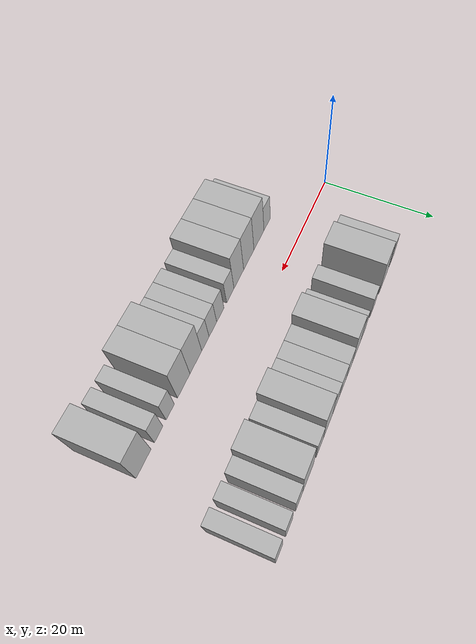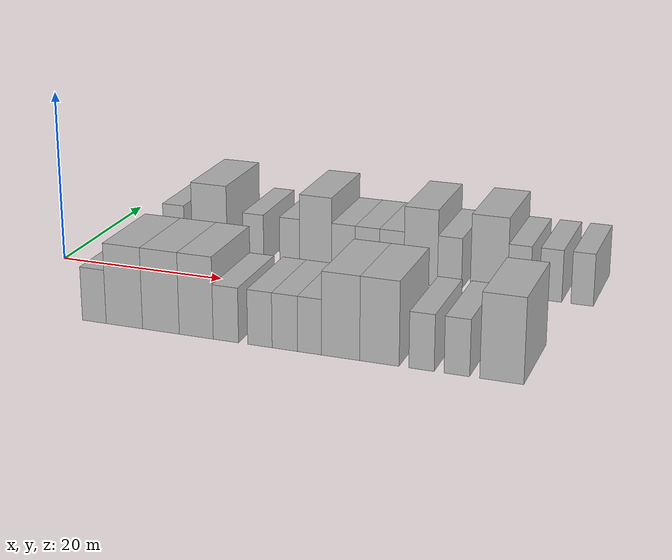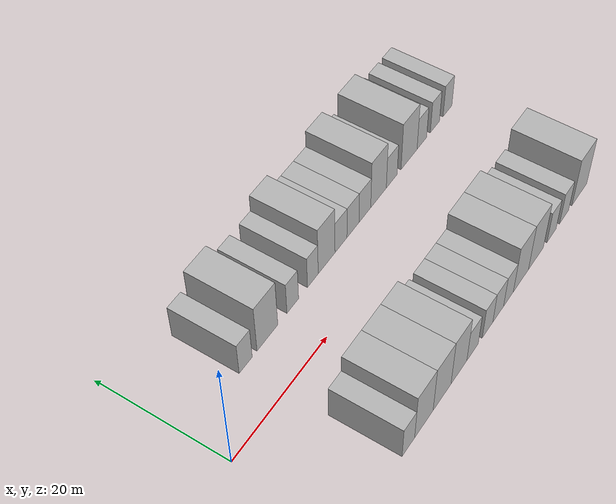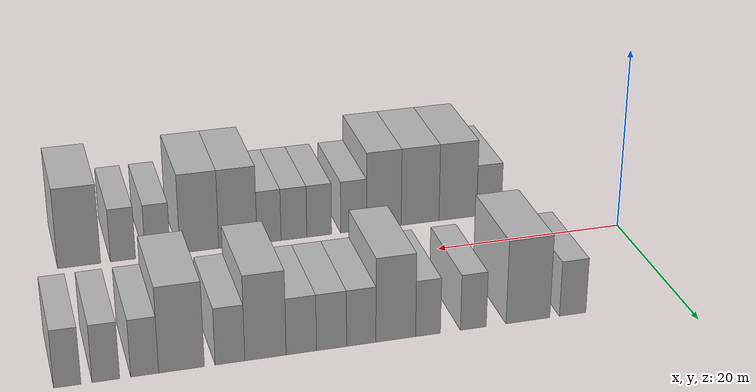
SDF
<sdf version="1.6">
 <world name="default">
  <model name="building_1">
   <static>1</static>
   <pose>11.3619 11.0000 0 0.000000 0.000000 1.570796</pose>
   <link name="link">
    <pose>0 0 3.00 0 0 0</pose>
    <collision name="collision"><geometry><box><size>10.0000 2.7237 6.0000</size></box></geometry></collision>
    <visual name="visual">
     <cast_shadows>0</cast_shadows>
     <geometry><box><size>10.0000 2.7237 6.0000</size></box></geometry>
     <material>
      <script>
       <uri>model://HANNAS_wall/materials/scripts</uri>
       <uri>model://HANNAS_wall/materials/textures</uri>
       <name>vrc/HANNAS_wall</name>
      </script>
     </material>
    </visual>
   </link>
  </model>
  <model name="building_2">
   <static>1</static>
   <pose>15.9564 11.0000 0 0.000000 0.000000 1.570796</pose>
   <link name="link">
    <pose>0 0 4.50 0 0 0</pose>
    <collision name="collision"><geometry><box><size>10.0000 4.4653 9.0000</size></box></geometry></collision>
    <visual name="visual">
     <cast_shadows>0</cast_shadows>
     <geometry><box><size>10.0000 4.4653 9.0000</size></box></geometry>
     <material>
      <script>
       <uri>model://HANNAS_wall/materials/scripts</uri>
       <uri>model://HANNAS_wall/materials/textures</uri>
       <name>vrc/HANNAS_wall</name>
      </script>
     </material>
    </visual>
   </link>
  </model>
  <model name="building_3">
   <static>1</static>
   <pose>21.4835 11.0000 0 0.000000 0.000000 1.570796</pose>
   <link name="link">
    <pose>0 0 3.00 0 0 0</pose>
    <collision name="collision"><geometry><box><size>10.0000 2.5890 6.0000</size></box></geometry></collision>
    <visual name="visual">
     <cast_shadows>0</cast_shadows>
     <geometry><box><size>10.0000 2.5890 6.0000</size></box></geometry>
     <material>
      <script>
       <uri>model://HANNAS_wall/materials/scripts</uri>
       <uri>model://HANNAS_wall/materials/textures</uri>
       <name>vrc/HANNAS_wall</name>
      </script>
     </material>
    </visual>
   </link>
  </model>
  <model name="building_4">
   <static>1</static>
   <pose>26.0084 11.0000 0 0.000000 0.000000 1.570796</pose>
   <link name="link">
    <pose>0 0 3.00 0 0 0</pose>
    <collision name="collision"><geometry><box><size>10.0000 2.4608 6.0000</size></box></geometry></collision>
    <visual name="visual">
     <cast_shadows>0</cast_shadows>
     <geometry><box><size>10.0000 2.4608 6.0000</size></box></geometry>
     <material>
      <script>
       <uri>model://HANNAS_wall/materials/scripts</uri>
       <uri>model://HANNAS_wall/materials/textures</uri>
       <name>vrc/HANNAS_wall</name>
      </script>
     </material>
    </visual>
   </link>
  </model>
  <model name="building_5">
   <static>1</static>
   <pose>29.1895 11.0000 0 0.000000 0.000000 1.570796</pose>
   <link name="link">
    <pose>0 0 4.50 0 0 0</pose>
    <collision name="collision"><geometry><box><size>10.0000 3.9013 9.0000</size></box></geometry></collision>
    <visual name="visual">
     <cast_shadows>0</cast_shadows>
     <geometry><box><size>10.0000 3.9013 9.0000</size></box></geometry>
     <material>
      <script>
       <uri>model://HANNAS_wall/materials/scripts</uri>
       <uri>model://HANNAS_wall/materials/textures</uri>
       <name>vrc/HANNAS_wall</name>
      </script>
     </material>
    </visual>
   </link>
  </model>
  <model name="building_6">
   <static>1</static>
   <pose>32.5640 11.0000 0 0.000000 0.000000 1.570796</pose>
   <link name="link">
    <pose>0 0 3.00 0 0 0</pose>
    <collision name="collision"><geometry><box><size>10.0000 2.8478 6.0000</size></box></geometry></collision>
    <visual name="visual">
     <cast_shadows>0</cast_shadows>
     <geometry><box><size>10.0000 2.8478 6.0000</size></box></geometry>
     <material>
      <script>
       <uri>model://HANNAS_wall/materials/scripts</uri>
       <uri>model://HANNAS_wall/materials/textures</uri>
       <name>vrc/HANNAS_wall</name>
      </script>
     </material>
    </visual>
   </link>
  </model>
  <model name="building_7">
   <static>1</static>
   <pose>35.4418 11.0000 0 0.000000 0.000000 1.570796</pose>
   <link name="link">
    <pose>0 0 3.00 0 0 0</pose>
    <collision name="collision"><geometry><box><size>10.0000 2.9078 6.0000</size></box></geometry></collision>
    <visual name="visual">
     <cast_shadows>0</cast_shadows>
     <geometry><box><size>10.0000 2.9078 6.0000</size></box></geometry>
     <material>
      <script>
       <uri>model://HANNAS_wall/materials/scripts</uri>
       <uri>model://HANNAS_wall/materials/textures</uri>
       <name>vrc/HANNAS_wall</name>
      </script>
     </material>
    </visual>
   </link>
  </model>
  <model name="building_8">
   <static>1</static>
   <pose>38.3424 11.0000 0 0.000000 0.000000 1.570796</pose>
   <link name="link">
    <pose>0 0 3.00 0 0 0</pose>
    <collision name="collision"><geometry><box><size>10.0000 2.8935 6.0000</size></box></geometry></collision>
    <visual name="visual">
     <cast_shadows>0</cast_shadows>
     <geometry><box><size>10.0000 2.8935 6.0000</size></box></geometry>
     <material>
      <script>
       <uri>model://HANNAS_wall/materials/scripts</uri>
       <uri>model://HANNAS_wall/materials/textures</uri>
       <name>vrc/HANNAS_wall</name>
      </script>
     </material>
    </visual>
   </link>
  </model>
  <model name="building_9">
   <static>1</static>
   <pose>41.7459 11.0000 0 0.000000 0.000000 1.570796</pose>
   <link name="link">
    <pose>0 0 4.50 0 0 0</pose>
    <collision name="collision"><geometry><box><size>10.0000 3.9136 9.0000</size></box></geometry></collision>
    <visual name="visual">
     <cast_shadows>0</cast_shadows>
     <geometry><box><size>10.0000 3.9136 9.0000</size></box></geometry>
     <material>
      <script>
       <uri>model://HANNAS_wall/materials/scripts</uri>
       <uri>model://HANNAS_wall/materials/textures</uri>
       <name>vrc/HANNAS_wall</name>
      </script>
     </material>
    </visual>
   </link>
  </model>
  <model name="building_10">
   <static>1</static>
   <pose>45.0957 11.0000 0 0.000000 0.000000 1.570796</pose>
   <link name="link">
    <pose>0 0 3.00 0 0 0</pose>
    <collision name="collision"><geometry><box><size>10.0000 2.7859 6.0000</size></box></geometry></collision>
    <visual name="visual">
     <cast_shadows>0</cast_shadows>
     <geometry><box><size>10.0000 2.7859 6.0000</size></box></geometry>
     <material>
      <script>
       <uri>model://HANNAS_wall/materials/scripts</uri>
       <uri>model://HANNAS_wall/materials/textures</uri>
       <name>vrc/HANNAS_wall</name>
      </script>
     </material>
    </visual>
   </link>
  </model>
  <model name="building_11">
   <static>1</static>
   <pose>49.6018 11.0000 0 0.000000 0.000000 1.570796</pose>
   <link name="link">
    <pose>0 0 4.50 0 0 0</pose>
    <collision name="collision"><geometry><box><size>10.0000 4.2262 9.0000</size></box></geometry></collision>
    <visual name="visual">
     <cast_shadows>0</cast_shadows>
     <geometry><box><size>10.0000 4.2262 9.0000</size></box></geometry>
     <material>
      <script>
       <uri>model://HANNAS_wall/materials/scripts</uri>
       <uri>model://HANNAS_wall/materials/textures</uri>
       <name>vrc/HANNAS_wall</name>
      </script>
     </material>
    </visual>
   </link>
  </model>
  <model name="building_12">
   <static>1</static>
   <pose>52.9961 11.0000 0 0.000000 0.000000 1.570796</pose>
   <link name="link">
    <pose>0 0 3.00 0 0 0</pose>
    <collision name="collision"><geometry><box><size>10.0000 2.5625 6.0000</size></box></geometry></collision>
    <visual name="visual">
     <cast_shadows>0</cast_shadows>
     <geometry><box><size>10.0000 2.5625 6.0000</size></box></geometry>
     <material>
      <script>
       <uri>model://HANNAS_wall/materials/scripts</uri>
       <uri>model://HANNAS_wall/materials/textures</uri>
       <name>vrc/HANNAS_wall</name>
      </script>
     </material>
    </visual>
   </link>
  </model>
  <model name="building_13">
   <static>1</static>
   <pose>56.5271 11.0000 0 0.000000 0.000000 1.570796</pose>
   <link name="link">
    <pose>0 0 3.00 0 0 0</pose>
    <collision name="collision"><geometry><box><size>10.0000 2.4995 6.0000</size></box></geometry></collision>
    <visual name="visual">
     <cast_shadows>0</cast_shadows>
     <geometry><box><size>10.0000 2.4995 6.0000</size></box></geometry>
     <material>
      <script>
       <uri>model://HANNAS_wall/materials/scripts</uri>
       <uri>model://HANNAS_wall/materials/textures</uri>
       <name>vrc/HANNAS_wall</name>
      </script>
     </material>
    </visual>
   </link>
  </model>
  <model name="building_14">
   <static>1</static>
   <pose>60.0050 11.0000 0 0.000000 0.000000 1.570796</pose>
   <link name="link">
    <pose>0 0 3.00 0 0 0</pose>
    <collision name="collision"><geometry><box><size>10.0000 2.4562 6.0000</size></box></geometry></collision>
    <visual name="visual">
     <cast_shadows>0</cast_shadows>
     <geometry><box><size>10.0000 2.4562 6.0000</size></box></geometry>
     <material>
      <script>
       <uri>model://HANNAS_wall/materials/scripts</uri>
       <uri>model://HANNAS_wall/materials/textures</uri>
       <name>vrc/HANNAS_wall</name>
      </script>
     </material>
    </visual>
   </link>
  </model>
  <model name="building_56">
   <static>1</static>
   <pose>12.4048 -11.0000 0 0.000000 0.000000 1.570796</pose>
   <link name="link">
    <pose>0 0 3.00 0 0 0</pose>
    <collision name="collision"><geometry><box><size>10.0000 2.8097 6.0000</size></box></geometry></collision>
    <visual name="visual">
     <cast_shadows>0</cast_shadows>
     <geometry><box><size>10.0000 2.8097 6.0000</size></box></geometry>
     <material>
      <script>
       <uri>model://HANNAS_wall/materials/scripts</uri>
       <uri>model://HANNAS_wall/materials/textures</uri>
       <name>vrc/HANNAS_wall</name>
      </script>
     </material>
    </visual>
   </link>
  </model>
  <model name="building_57">
   <static>1</static>
   <pose>15.9327 -11.0000 0 0.000000 0.000000 1.570796</pose>
   <link name="link">
    <pose>0 0 4.50 0 0 0</pose>
    <collision name="collision"><geometry><box><size>10.0000 4.2461 9.0000</size></box></geometry></collision>
    <visual name="visual">
     <cast_shadows>0</cast_shadows>
     <geometry><box><size>10.0000 4.2461 9.0000</size></box></geometry>
     <material>
      <script>
       <uri>model://HANNAS_wall/materials/scripts</uri>
       <uri>model://HANNAS_wall/materials/textures</uri>
       <name>vrc/HANNAS_wall</name>
      </script>
     </material>
    </visual>
   </link>
  </model>
  <model name="building_58">
   <static>1</static>
   <pose>20.1625 -11.0000 0 0.000000 0.000000 1.570796</pose>
   <link name="link">
    <pose>0 0 4.50 0 0 0</pose>
    <collision name="collision"><geometry><box><size>10.0000 4.2135 9.0000</size></box></geometry></collision>
    <visual name="visual">
     <cast_shadows>0</cast_shadows>
     <geometry><box><size>10.0000 4.2135 9.0000</size></box></geometry>
     <material>
      <script>
       <uri>model://HANNAS_wall/materials/scripts</uri>
       <uri>model://HANNAS_wall/materials/textures</uri>
       <name>vrc/HANNAS_wall</name>
      </script>
     </material>
    </visual>
   </link>
  </model>
  <model name="building_59">
   <static>1</static>
   <pose>24.1878 -11.0000 0 0.000000 0.000000 1.570796</pose>
   <link name="link">
    <pose>0 0 4.50 0 0 0</pose>
    <collision name="collision"><geometry><box><size>10.0000 3.8370 9.0000</size></box></geometry></collision>
    <visual name="visual">
     <cast_shadows>0</cast_shadows>
     <geometry><box><size>10.0000 3.8370 9.0000</size></box></geometry>
     <material>
      <script>
       <uri>model://HANNAS_wall/materials/scripts</uri>
       <uri>model://HANNAS_wall/materials/textures</uri>
       <name>vrc/HANNAS_wall</name>
      </script>
     </material>
    </visual>
   </link>
  </model>
  <model name="building_60">
   <static>1</static>
   <pose>27.5183 -11.0000 0 0.000000 0.000000 1.570796</pose>
   <link name="link">
    <pose>0 0 3.00 0 0 0</pose>
    <collision name="collision"><geometry><box><size>10.0000 2.8242 6.0000</size></box></geometry></collision>
    <visual name="visual">
     <cast_shadows>0</cast_shadows>
     <geometry><box><size>10.0000 2.8242 6.0000</size></box></geometry>
     <material>
      <script>
       <uri>model://HANNAS_wall/materials/scripts</uri>
       <uri>model://HANNAS_wall/materials/textures</uri>
       <name>vrc/HANNAS_wall</name>
      </script>
     </material>
    </visual>
   </link>
  </model>
  <model name="building_61">
   <static>1</static>
   <pose>31.2732 -11.0000 0 0.000000 0.000000 1.570796</pose>
   <link name="link">
    <pose>0 0 3.00 0 0 0</pose>
    <collision name="collision"><geometry><box><size>10.0000 2.6855 6.0000</size></box></geometry></collision>
    <visual name="visual">
     <cast_shadows>0</cast_shadows>
     <geometry><box><size>10.0000 2.6855 6.0000</size></box></geometry>
     <material>
      <script>
       <uri>model://HANNAS_wall/materials/scripts</uri>
       <uri>model://HANNAS_wall/materials/textures</uri>
       <name>vrc/HANNAS_wall</name>
      </script>
     </material>
    </visual>
   </link>
  </model>
  <model name="building_62">
   <static>1</static>
   <pose>33.9993 -11.0000 0 0.000000 0.000000 1.570796</pose>
   <link name="link">
    <pose>0 0 3.00 0 0 0</pose>
    <collision name="collision"><geometry><box><size>10.0000 2.7667 6.0000</size></box></geometry></collision>
    <visual name="visual">
     <cast_shadows>0</cast_shadows>
     <geometry><box><size>10.0000 2.7667 6.0000</size></box></geometry>
     <material>
      <script>
       <uri>model://HANNAS_wall/materials/scripts</uri>
       <uri>model://HANNAS_wall/materials/textures</uri>
       <name>vrc/HANNAS_wall</name>
      </script>
     </material>
    </visual>
   </link>
  </model>
  <model name="building_63">
   <static>1</static>
   <pose>36.6693 -11.0000 0 0.000000 0.000000 1.570796</pose>
   <link name="link">
    <pose>0 0 3.00 0 0 0</pose>
    <collision name="collision"><geometry><box><size>10.0000 2.5733 6.0000</size></box></geometry></collision>
    <visual name="visual">
     <cast_shadows>0</cast_shadows>
     <geometry><box><size>10.0000 2.5733 6.0000</size></box></geometry>
     <material>
      <script>
       <uri>model://HANNAS_wall/materials/scripts</uri>
       <uri>model://HANNAS_wall/materials/textures</uri>
       <name>vrc/HANNAS_wall</name>
      </script>
     </material>
    </visual>
   </link>
  </model>
  <model name="building_64">
   <static>1</static>
   <pose>39.9777 -11.0000 0 0.000000 0.000000 1.570796</pose>
   <link name="link">
    <pose>0 0 4.50 0 0 0</pose>
    <collision name="collision"><geometry><box><size>10.0000 4.0435 9.0000</size></box></geometry></collision>
    <visual name="visual">
     <cast_shadows>0</cast_shadows>
     <geometry><box><size>10.0000 4.0435 9.0000</size></box></geometry>
     <material>
      <script>
       <uri>model://HANNAS_wall/materials/scripts</uri>
       <uri>model://HANNAS_wall/materials/textures</uri>
       <name>vrc/HANNAS_wall</name>
      </script>
     </material>
    </visual>
   </link>
  </model>
  <model name="building_65">
   <static>1</static>
   <pose>44.0484 -11.0000 0 0.000000 0.000000 1.570796</pose>
   <link name="link">
    <pose>0 0 4.50 0 0 0</pose>
    <collision name="collision"><geometry><box><size>10.0000 4.0979 9.0000</size></box></geometry></collision>
    <visual name="visual">
     <cast_shadows>0</cast_shadows>
     <geometry><box><size>10.0000 4.0979 9.0000</size></box></geometry>
     <material>
      <script>
       <uri>model://HANNAS_wall/materials/scripts</uri>
       <uri>model://HANNAS_wall/materials/textures</uri>
       <name>vrc/HANNAS_wall</name>
      </script>
     </material>
    </visual>
   </link>
  </model>
  <model name="building_66">
   <static>1</static>
   <pose>48.3936 -11.0000 0 0.000000 0.000000 1.570796</pose>
   <link name="link">
    <pose>0 0 3.00 0 0 0</pose>
    <collision name="collision"><geometry><box><size>10.0000 2.5927 6.0000</size></box></geometry></collision>
    <visual name="visual">
     <cast_shadows>0</cast_shadows>
     <geometry><box><size>10.0000 2.5927 6.0000</size></box></geometry>
     <material>
      <script>
       <uri>model://HANNAS_wall/materials/scripts</uri>
       <uri>model://HANNAS_wall/materials/textures</uri>
       <name>vrc/HANNAS_wall</name>
      </script>
     </material>
    </visual>
   </link>
  </model>
  <model name="building_67">
   <static>1</static>
   <pose>51.9815 -11.0000 0 0.000000 0.000000 1.570796</pose>
   <link name="link">
    <pose>0 0 3.00 0 0 0</pose>
    <collision name="collision"><geometry><box><size>10.0000 2.5831 6.0000</size></box></geometry></collision>
    <visual name="visual">
     <cast_shadows>0</cast_shadows>
     <geometry><box><size>10.0000 2.5831 6.0000</size></box></geometry>
     <material>
      <script>
       <uri>model://HANNAS_wall/materials/scripts</uri>
       <uri>model://HANNAS_wall/materials/textures</uri>
       <name>vrc/HANNAS_wall</name>
      </script>
     </material>
    </visual>
   </link>
  </model>
  <model name="building_68">
   <static>1</static>
   <pose>56.4591 -11.0000 0 0.000000 0.000000 1.570796</pose>
   <link name="link">
    <pose>0 0 4.50 0 0 0</pose>
    <collision name="collision"><geometry><box><size>10.0000 4.3722 9.0000</size></box></geometry></collision>
    <visual name="visual">
     <cast_shadows>0</cast_shadows>
     <geometry><box><size>10.0000 4.3722 9.0000</size></box></geometry>
     <material>
      <script>
       <uri>model://HANNAS_wall/materials/scripts</uri>
       <uri>model://HANNAS_wall/materials/textures</uri>
       <name>vrc/HANNAS_wall</name>
      </script>
     </material>
    </visual>
   </link>
  </model>
 </world>
</sdf>
